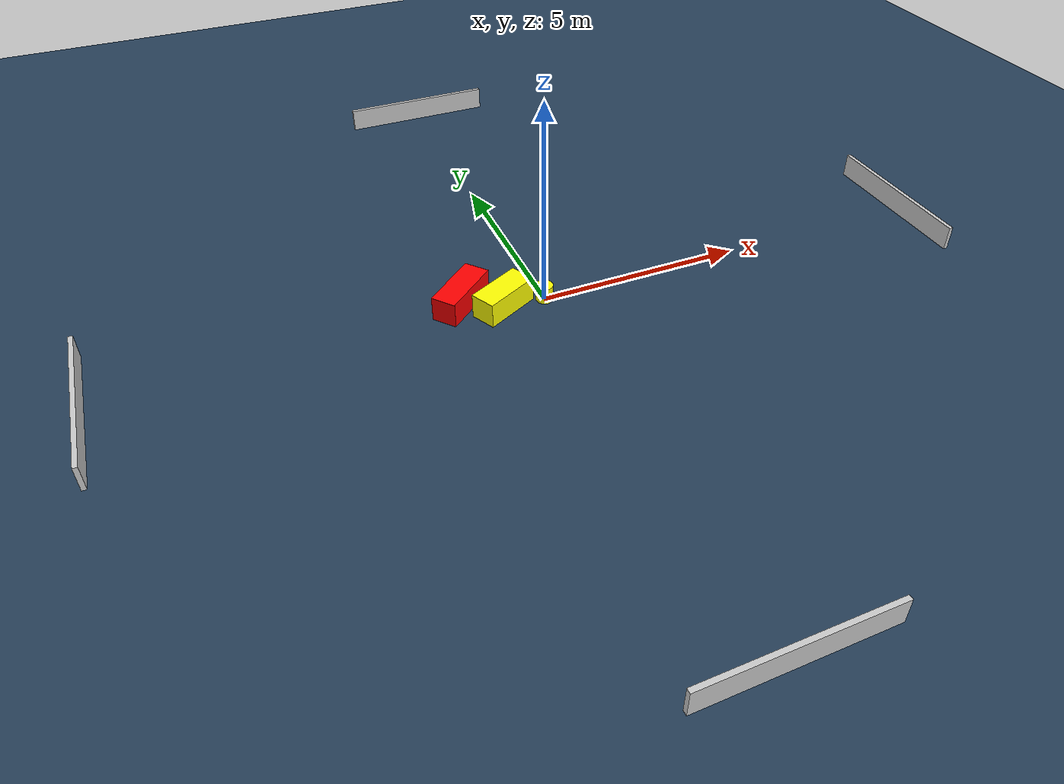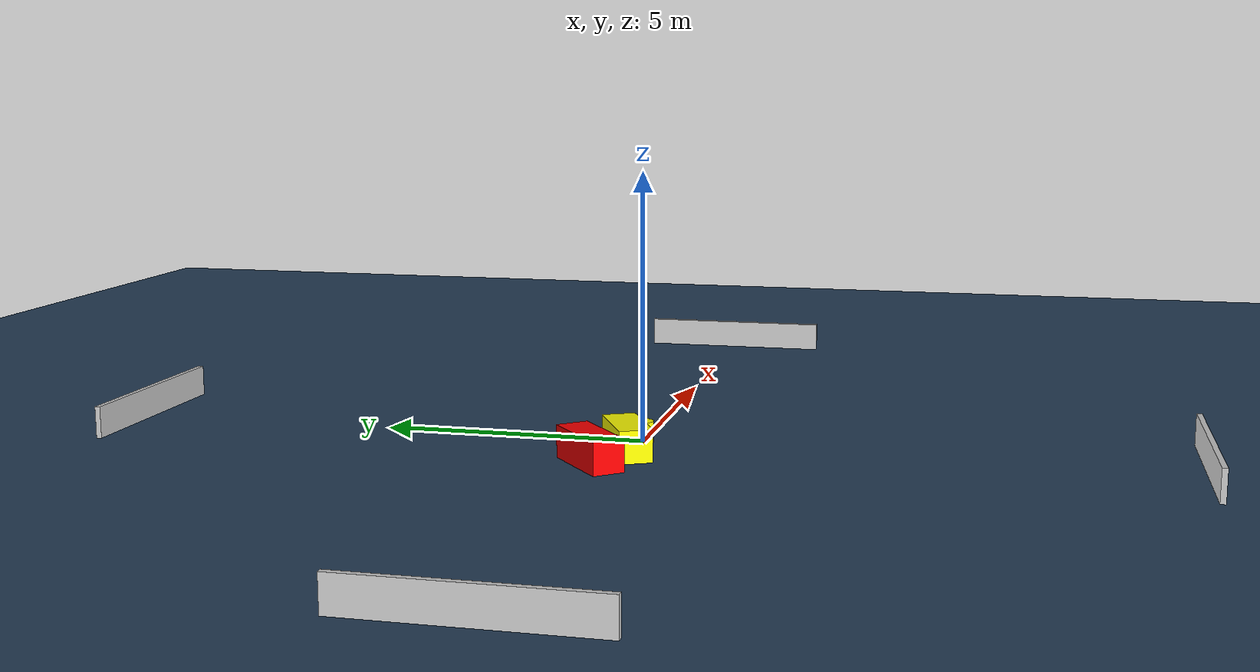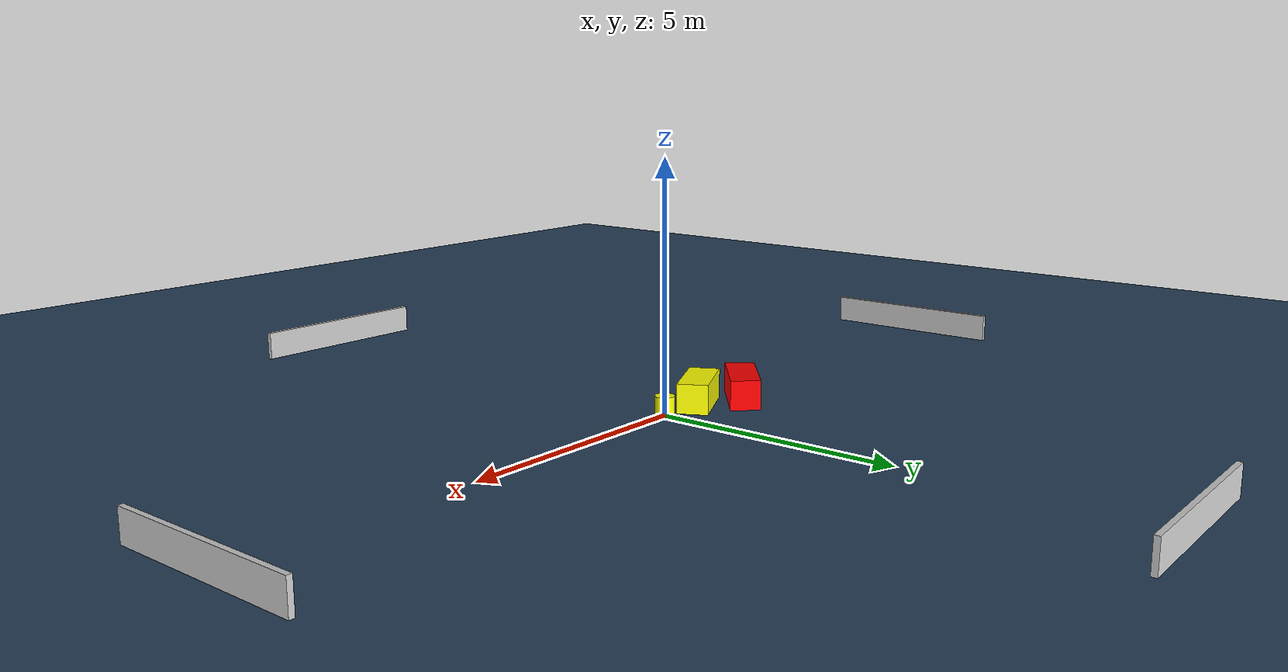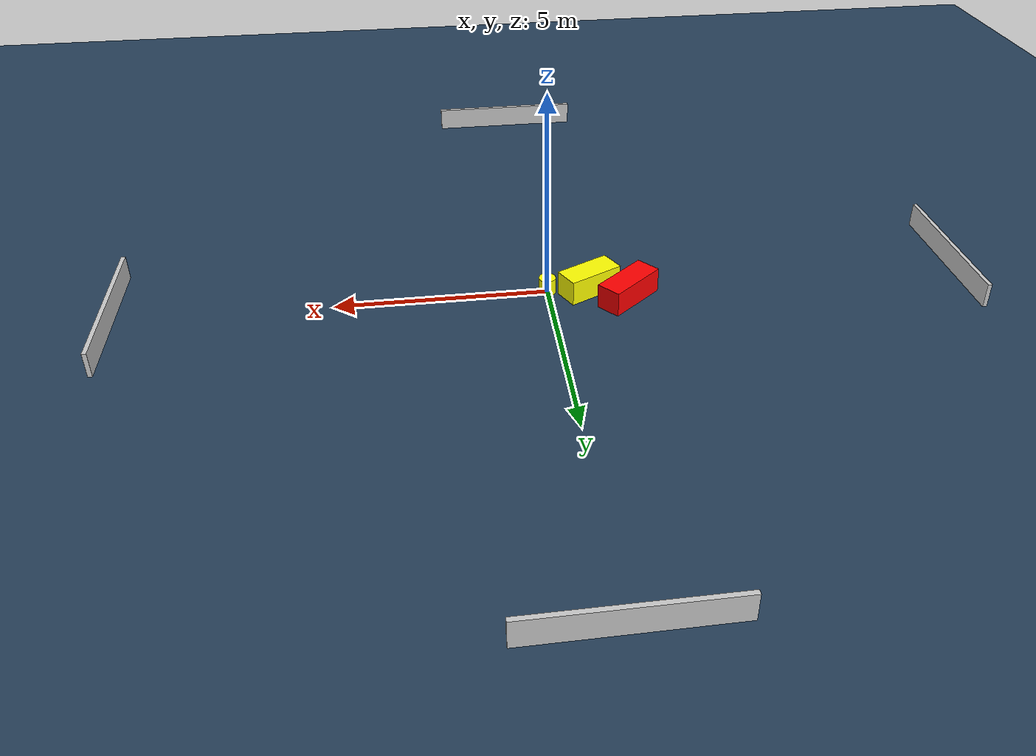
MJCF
<?xml version="1.0" ?>
<mujoco model="generated_environment">
  <option timestep="0.01" integrator="RK4" cone="elliptic"/>
  <default>
    <geom density="1"/>
  </default>
  <asset>
    <texture builtin="gradient" height="3072" name="skybox" rgb1="0.3 0.5 0.7" rgb2="0 0 0" type="skybox" width="512"/>
    <texture builtin="checker" height="300" name="groundplane" rgb1="0.2 0.3 0.4" rgb2="0.1 0.2 0.3" type="2d" width="300"/>
    <material name="groundplane" reflectance="0.2" texrepeat="5 5" texture="groundplane"/>
  </asset>
  <worldbody>
    <light dir="0 0 -1" directional="true" pos="0 0 1.5"/>
    <geom condim="3" friction="0.5 0.005 0.001" material="groundplane" name="floor" pos="0 0 0" size="0 0 0.05" type="plane"/>
    <body name="walls">
      <geom name="wall_1" condim="4" pos="-10.0 0.0 0.3" rgba="0.800000011920929 0.800000011920929 0.800000011920929 1.0" size="0.05 2.0 0.3" type="box"/>
      <geom name="wall_2" condim="4" pos="10.0 0.0 0.3" rgba="0.800000011920929 0.800000011920929 0.800000011920929 1.0" size="0.05 2.0 0.3" type="box"/>
      <geom name="wall_3" condim="4" pos="0.0 -10.0 0.3" rgba="0.800000011920929 0.800000011920929 0.800000011920929 1.0" size="2.0 0.05 0.3" type="box"/>
      <geom name="wall_4" condim="4" pos="0.0 10.0 0.3" rgba="0.800000011920929 0.800000011920929 0.800000011920929 1.0" size="2.0 0.05 0.3" type="box"/>
    </body>
    <body name="robot">
      <joint name="joint_x" type="slide" pos="0 0 0" axis="1 0 0"/>
      <joint name="joint_y" type="slide" pos="0 0 0" axis="0 1 0"/>
      <geom name="robot" type="cylinder" pos="0.0 0.0 0.2" size="0.2 0.2 0.0" mass="5.0" friction="1.0 0.005 0.0001" condim="4" rgba="1.0 1.0 0.0 1.0"/>
    </body>
    <body name="obstacle_1_movable">
      <geom name="obstacle_1_movable" condim="4" pos="-0.9903720865011109 0.06843026128167279 0.3" euler="0 0 116.78622590810521" friction="0.0 0.005 0.001" rgba="1.0 1.0 0.0 1.0" size="0.3085027044427218 0.6843262395025455 0.3" type="box" mass="0.1"/>
      <joint type="free"/>
    </body>
    <body name="obstacle_2_static">
      <geom name="obstacle_2_static" condim="4" pos="-1.8408107641328868 0.5357568648523375 0.3" euler="0 0 220.20049885326682" friction="0.0 0.005 0.001" rgba="1.0 0.0 0.0 1.0" size="0.7485797818301996 0.30256951962078915 0.3" type="box"/>
    </body>
  </worldbody>
  <actuator>
    <motor name="actuator_x" joint="joint_x" gear="1" ctrlrange="-1 1"/>
    <motor name="actuator_y" joint="joint_y" gear="1" ctrlrange="-1 1"/>
  </actuator>
</mujoco>
